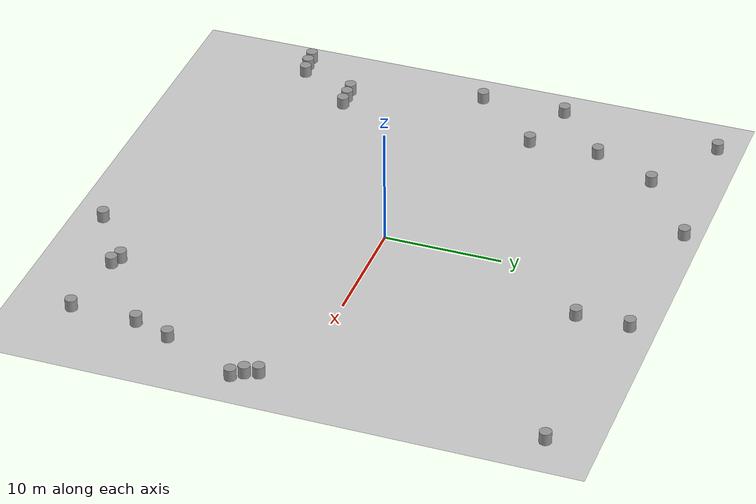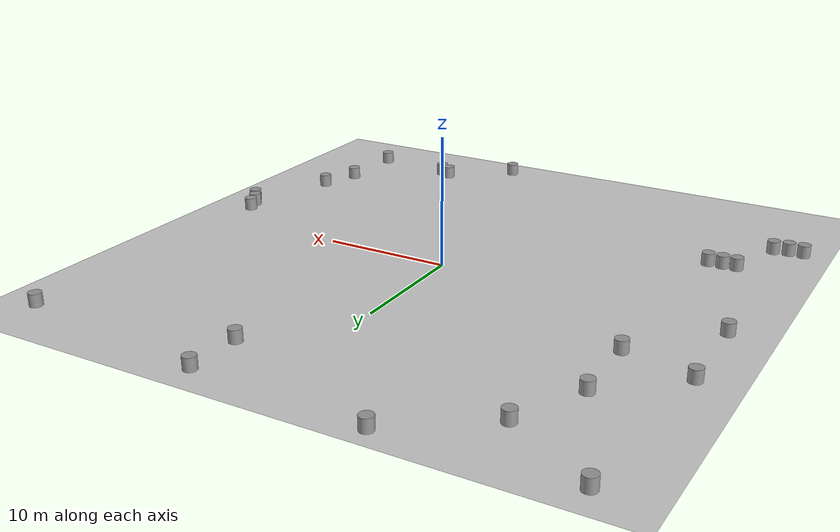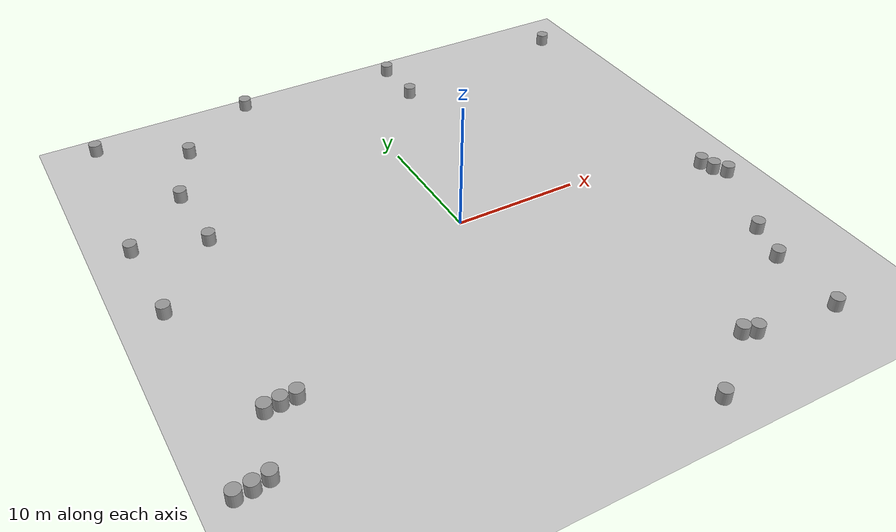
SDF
<sdf version="1.7">
 <world name="default">
  <light name="sun" type="directional">
   <pose>0 0 10 0 -0 0</pose>
   <diffuse>0.8 0.8 0.8 1</diffuse>
   <specular>0.2 0.2 0.2 1</specular>
   <attenuation>
    <range>1000</range>
    <constant>0.9</constant>
    <linear>0.01</linear>
    <quadratic>0.001</quadratic>
   </attenuation>
   <direction>-0.5 0.1 -0.9</direction>
   <spot><inner_angle>0</inner_angle><outer_angle>0</outer_angle><falloff>0</falloff></spot>
  </light>
  <gravity>0 0 -9.8</gravity>
  <magnetic_field>6e-06 2.3e-05 -4.2e-05</magnetic_field>
  <atmosphere type="adiabatic"/>
  <physics type="ode">
   <max_step_size>0.001</max_step_size>
   <real_time_factor>1</real_time_factor>
   <real_time_update_rate>1000</real_time_update_rate>
  </physics>
  <scene><ambient>0.4 0.4 0.4 1</ambient><background>0.7 0.7 0.7 1</background><shadows>1</shadows></scene>
  <spherical_coordinates>
   <surface_model>EARTH_WGS84</surface_model>
   <latitude_deg>0</latitude_deg>
   <longitude_deg>0</longitude_deg>
   <elevation>0</elevation>
   <heading_deg>0</heading_deg>
  </spherical_coordinates>
  <model name="grass">
   <static>1</static>
   <link name="link">
    <collision name="collision">
     <geometry><plane><normal>0 0 1</normal><size>10 10</size></plane></geometry>
     <surface><friction><ode><mu>100</mu><mu2>50</mu2></ode></friction></surface>
    </collision>
    <visual name="visual">
     <cast_shadows>0</cast_shadows>
     <geometry><plane><normal>0 0 1</normal><size>50 50</size></plane></geometry>
     <material>
      <script><uri>model://grass/materials/scripts/grass.material</uri><name>grass/ground</name></script>
     </material>
    </visual>
   </link>
   <pose>-0.500597 -0.51469 0 0 -0 0</pose>
  </model>
  <model name="unit_cylinder">
   <pose>10.068 -19.0924 0.499997 3e-06 2e-06 0.002457</pose>
   <link name="link">
    <inertial>
     <mass>1</mass>
     <inertia><ixx>0.145833</ixx><ixy>0</ixy><ixz>0</ixz><iyy>0.145833</iyy><iyz>0</iyz><izz>0.125</izz></inertia>
    </inertial>
    <collision name="collision">
     <geometry><cylinder><radius>0.5</radius><length>1</length></cylinder></geometry>
    </collision>
    <visual name="visual">
     <geometry><cylinder><radius>0.5</radius><length>1</length></cylinder></geometry>
     <material>
      <script><name>Gazebo/Grey</name><uri>file://media/materials/scripts/gazebo.material</uri></script>
     </material>
    </visual>
   </link>
  </model>
  <model name="unit_cylinder_0">
   <pose>5.23243 -22.7535 0.499997 3e-06 2e-06 0</pose>
   <link name="link">
    <inertial>
     <mass>1</mass>
     <inertia><ixx>0.145833</ixx><ixy>0</ixy><ixz>0</ixz><iyy>0.145833</iyy><iyz>0</iyz><izz>0.125</izz></inertia>
    </inertial>
    <collision name="collision">
     <geometry><cylinder><radius>0.5</radius><length>1</length></cylinder></geometry>
    </collision>
    <visual name="visual">
     <geometry><cylinder><radius>0.5</radius><length>1</length></cylinder></geometry>
     <material>
      <script><name>Gazebo/Grey</name><uri>file://media/materials/scripts/gazebo.material</uri></script>
     </material>
    </visual>
   </link>
  </model>
  <model name="unit_cylinder_1">
   <pose>10.9805 -19.5037 0.499996 3e-06 1e-06 0.009473</pose>
   <link name="link">
    <inertial>
     <mass>1</mass>
     <inertia><ixx>0.145833</ixx><ixy>0</ixy><ixz>0</ixz><iyy>0.145833</iyy><iyz>0</iyz><izz>0.125</izz></inertia>
    </inertial>
    <collision name="collision">
     <geometry><cylinder><radius>0.5</radius><length>1</length></cylinder></geometry>
    </collision>
    <visual name="visual">
     <geometry><cylinder><radius>0.5</radius><length>1</length></cylinder></geometry>
     <material>
      <script><name>Gazebo/Grey</name><uri>file://media/materials/scripts/gazebo.material</uri></script>
     </material>
    </visual>
   </link>
  </model>
  <model name="unit_cylinder_2">
   <pose>17.4229 -20.1741 0.499997 3e-06 2e-06 0</pose>
   <link name="link">
    <inertial>
     <mass>1</mass>
     <inertia><ixx>0.145833</ixx><ixy>0</ixy><ixz>0</ixz><iyy>0.145833</iyy><iyz>0</iyz><izz>0.125</izz></inertia>
    </inertial>
    <collision name="collision">
     <geometry><cylinder><radius>0.5</radius><length>1</length></cylinder></geometry>
    </collision>
    <visual name="visual">
     <geometry><cylinder><radius>0.5</radius><length>1</length></cylinder></geometry>
     <material>
      <script><name>Gazebo/Grey</name><uri>file://media/materials/scripts/gazebo.material</uri></script>
     </material>
    </visual>
   </link>
  </model>
  <model name="unit_cylinder_3">
   <pose>17.5996 -14.5253 0.499997 3e-06 2e-06 0</pose>
   <link name="link">
    <inertial>
     <mass>1</mass>
     <inertia><ixx>0.145833</ixx><ixy>0</ixy><ixz>0</ixz><iyy>0.145833</iyy><iyz>0</iyz><izz>0.125</izz></inertia>
    </inertial>
    <collision name="collision">
     <geometry><cylinder><radius>0.5</radius><length>1</length></cylinder></geometry>
    </collision>
    <visual name="visual">
     <geometry><cylinder><radius>0.5</radius><length>1</length></cylinder></geometry>
     <material>
      <script><name>Gazebo/Grey</name><uri>file://media/materials/scripts/gazebo.material</uri></script>
     </material>
    </visual>
   </link>
  </model>
  <model name="unit_cylinder_4">
   <pose>18.6652 -11.3863 0.499994 -3e-06 -2e-06 0</pose>
   <link name="link">
    <inertial>
     <mass>1</mass>
     <inertia><ixx>0.145833</ixx><ixy>0</ixy><ixz>0</ixz><iyy>0.145833</iyy><iyz>0</iyz><izz>0.125</izz></inertia>
    </inertial>
    <collision name="collision">
     <geometry><cylinder><radius>0.5</radius><length>1</length></cylinder></geometry>
    </collision>
    <visual name="visual">
     <geometry><cylinder><radius>0.5</radius><length>1</length></cylinder></geometry>
     <material>
      <script><name>Gazebo/Grey</name><uri>file://media/materials/scripts/gazebo.material</uri></script>
     </material>
    </visual>
   </link>
  </model>
  <model name="unit_cylinder_5">
   <pose>21.6345 -4.91974 0.499997 4e-06 2e-06 -0</pose>
   <link name="link">
    <inertial>
     <mass>1</mass>
     <inertia><ixx>0.145833</ixx><ixy>0</ixy><ixz>0</ixz><iyy>0.145833</iyy><iyz>0</iyz><izz>0.125</izz></inertia>
    </inertial>
    <collision name="collision">
     <geometry><cylinder><radius>0.5</radius><length>1</length></cylinder></geometry>
    </collision>
    <visual name="visual">
     <geometry><cylinder><radius>0.5</radius><length>1</length></cylinder></geometry>
     <material>
      <script><name>Gazebo/Grey</name><uri>file://media/materials/scripts/gazebo.material</uri></script>
     </material>
    </visual>
   </link>
  </model>
  <model name="unit_cylinder_6">
   <pose>20.9636 -4.0158 0.499997 4e-06 3e-06 -0</pose>
   <link name="link">
    <inertial>
     <mass>1</mass>
     <inertia><ixx>0.145833</ixx><ixy>0</ixy><ixz>0</ixz><iyy>0.145833</iyy><iyz>0</iyz><izz>0.125</izz></inertia>
    </inertial>
    <collision name="collision">
     <geometry><cylinder><radius>0.5</radius><length>1</length></cylinder></geometry>
    </collision>
    <visual name="visual">
     <geometry><cylinder><radius>0.5</radius><length>1</length></cylinder></geometry>
     <material>
      <script><name>Gazebo/Grey</name><uri>file://media/materials/scripts/gazebo.material</uri></script>
     </material>
    </visual>
   </link>
  </model>
  <model name="unit_cylinder_7">
   <pose>20.5934 -2.95704 0.499994 -4e-06 -3e-06 -0</pose>
   <link name="link">
    <inertial>
     <mass>1</mass>
     <inertia><ixx>0.145833</ixx><ixy>0</ixy><ixz>0</ixz><iyy>0.145833</iyy><iyz>0</iyz><izz>0.125</izz></inertia>
    </inertial>
    <collision name="collision">
     <geometry><cylinder><radius>0.5</radius><length>1</length></cylinder></geometry>
    </collision>
    <visual name="visual">
     <geometry><cylinder><radius>0.5</radius><length>1</length></cylinder></geometry>
     <material>
      <script><name>Gazebo/Grey</name><uri>file://media/materials/scripts/gazebo.material</uri></script>
     </material>
    </visual>
   </link>
  </model>
  <model name="unit_cylinder_8">
   <pose>21.0544 20.3519 0.499997 4e-06 3e-06 -0</pose>
   <link name="link">
    <inertial>
     <mass>1</mass>
     <inertia><ixx>0.145833</ixx><ixy>0</ixy><ixz>0</ixz><iyy>0.145833</iyy><iyz>0</iyz><izz>0.125</izz></inertia>
    </inertial>
    <collision name="collision">
     <geometry><cylinder><radius>0.5</radius><length>1</length></cylinder></geometry>
    </collision>
    <visual name="visual">
     <geometry><cylinder><radius>0.5</radius><length>1</length></cylinder></geometry>
     <material>
      <script><name>Gazebo/Grey</name><uri>file://media/materials/scripts/gazebo.material</uri></script>
     </material>
    </visual>
   </link>
  </model>
  <model name="unit_cylinder_9">
   <pose>5.31202 22.3543 0.499994 -4e-06 -3e-06 -0</pose>
   <link name="link">
    <inertial>
     <mass>1</mass>
     <inertia><ixx>0.145833</ixx><ixy>0</ixy><ixz>0</ixz><iyy>0.145833</iyy><iyz>0</iyz><izz>0.125</izz></inertia>
    </inertial>
    <collision name="collision">
     <geometry><cylinder><radius>0.5</radius><length>1</length></cylinder></geometry>
    </collision>
    <visual name="visual">
     <geometry><cylinder><radius>0.5</radius><length>1</length></cylinder></geometry>
     <material>
      <script><name>Gazebo/Grey</name><uri>file://media/materials/scripts/gazebo.material</uri></script>
     </material>
    </visual>
   </link>
  </model>
  <model name="unit_cylinder_10">
   <pose>5.32308 17.9226 0.499997 4e-06 3e-06 -0</pose>
   <link name="link">
    <inertial>
     <mass>1</mass>
     <inertia><ixx>0.145833</ixx><ixy>0</ixy><ixz>0</ixz><iyy>0.145833</iyy><iyz>0</iyz><izz>0.125</izz></inertia>
    </inertial>
    <collision name="collision">
     <geometry><cylinder><radius>0.5</radius><length>1</length></cylinder></geometry>
    </collision>
    <visual name="visual">
     <geometry><cylinder><radius>0.5</radius><length>1</length></cylinder></geometry>
     <material>
      <script><name>Gazebo/Grey</name><uri>file://media/materials/scripts/gazebo.material</uri></script>
     </material>
    </visual>
   </link>
  </model>
  <model name="unit_cylinder_11">
   <pose>-8.15629 23.0363 0.499997 4e-06 3e-06 -0</pose>
   <link name="link">
    <inertial>
     <mass>1</mass>
     <inertia><ixx>0.145833</ixx><ixy>0</ixy><ixz>0</ixz><iyy>0.145833</iyy><iyz>0</iyz><izz>0.125</izz></inertia>
    </inertial>
    <collision name="collision">
     <geometry><cylinder><radius>0.5</radius><length>1</length></cylinder></geometry>
    </collision>
    <visual name="visual">
     <geometry><cylinder><radius>0.5</radius><length>1</length></cylinder></geometry>
     <material>
      <script><name>Gazebo/Grey</name><uri>file://media/materials/scripts/gazebo.material</uri></script>
     </material>
    </visual>
   </link>
  </model>
  <model name="unit_cylinder_12">
   <pose>-21.3041 22.3159 0.499994 -4e-06 -3e-06 -0</pose>
   <link name="link">
    <inertial>
     <mass>1</mass>
     <inertia><ixx>0.145833</ixx><ixy>0</ixy><ixz>0</ixz><iyy>0.145833</iyy><iyz>0</iyz><izz>0.125</izz></inertia>
    </inertial>
    <collision name="collision">
     <geometry><cylinder><radius>0.5</radius><length>1</length></cylinder></geometry>
    </collision>
    <visual name="visual">
     <geometry><cylinder><radius>0.5</radius><length>1</length></cylinder></geometry>
     <material>
      <script><name>Gazebo/Grey</name><uri>file://media/materials/scripts/gazebo.material</uri></script>
     </material>
    </visual>
   </link>
  </model>
  <model name="unit_cylinder_13">
   <pose>-17.2545 12.9465 0.499994 -4e-06 -4e-06 -0</pose>
   <link name="link">
    <inertial>
     <mass>1</mass>
     <inertia><ixx>0.145833</ixx><ixy>0</ixy><ixz>0</ixz><iyy>0.145833</iyy><iyz>0</iyz><izz>0.125</izz></inertia>
    </inertial>
    <collision name="collision">
     <geometry><cylinder><radius>0.5</radius><length>1</length></cylinder></geometry>
    </collision>
    <visual name="visual">
     <geometry><cylinder><radius>0.5</radius><length>1</length></cylinder></geometry>
     <material>
      <script><name>Gazebo/Grey</name><uri>file://media/materials/scripts/gazebo.material</uri></script>
     </material>
    </visual>
   </link>
  </model>
  <model name="unit_cylinder_14">
   <pose>-22.4143 8.40238 0.499998 3e-06 -4e-06 0</pose>
   <link name="link">
    <inertial>
     <mass>1</mass>
     <inertia><ixx>0.145833</ixx><ixy>0</ixy><ixz>0</ixz><iyy>0.145833</iyy><iyz>0</iyz><izz>0.125</izz></inertia>
    </inertial>
    <collision name="collision">
     <geometry><cylinder><radius>0.5</radius><length>1</length></cylinder></geometry>
    </collision>
    <visual name="visual">
     <geometry><cylinder><radius>0.5</radius><length>1</length></cylinder></geometry>
     <material>
      <script><name>Gazebo/Grey</name><uri>file://media/materials/scripts/gazebo.material</uri></script>
     </material>
    </visual>
   </link>
  </model>
  <model name="unit_cylinder_15">
   <pose>-17.0837 6.95572 0.499998 3e-06 -4e-06 0</pose>
   <link name="link">
    <inertial>
     <mass>1</mass>
     <inertia><ixx>0.145833</ixx><ixy>0</ixy><ixz>0</ixz><iyy>0.145833</iyy><iyz>0</iyz><izz>0.125</izz></inertia>
    </inertial>
    <collision name="collision">
     <geometry><cylinder><radius>0.5</radius><length>1</length></cylinder></geometry>
    </collision>
    <visual name="visual">
     <geometry><cylinder><radius>0.5</radius><length>1</length></cylinder></geometry>
     <material>
      <script><name>Gazebo/Grey</name><uri>file://media/materials/scripts/gazebo.material</uri></script>
     </material>
    </visual>
   </link>
  </model>
  <model name="unit_cylinder_16">
   <pose>-14.7467 18.362 0.499992 -4e-06 4e-06 0</pose>
   <link name="link">
    <inertial>
     <mass>1</mass>
     <inertia><ixx>0.145833</ixx><ixy>0</ixy><ixz>0</ixz><iyy>0.145833</iyy><iyz>0</iyz><izz>0.125</izz></inertia>
    </inertial>
    <collision name="collision">
     <geometry><cylinder><radius>0.5</radius><length>1</length></cylinder></geometry>
    </collision>
    <visual name="visual">
     <geometry><cylinder><radius>0.5</radius><length>1</length></cylinder></geometry>
     <material>
      <script><name>Gazebo/Grey</name><uri>file://media/materials/scripts/gazebo.material</uri></script>
     </material>
    </visual>
   </link>
  </model>
  <model name="unit_cylinder_17">
   <pose>-22.2747 1.07529 0.499992 -3e-06 -4e-06 -0</pose>
   <link name="link">
    <inertial>
     <mass>1</mass>
     <inertia><ixx>0.145833</ixx><ixy>0</ixy><ixz>0</ixz><iyy>0.145833</iyy><iyz>0</iyz><izz>0.125</izz></inertia>
    </inertial>
    <collision name="collision">
     <geometry><cylinder><radius>0.5</radius><length>1</length></cylinder></geometry>
    </collision>
    <visual name="visual">
     <geometry><cylinder><radius>0.5</radius><length>1</length></cylinder></geometry>
     <material>
      <script><name>Gazebo/Grey</name><uri>file://media/materials/scripts/gazebo.material</uri></script>
     </material>
    </visual>
   </link>
  </model>
  <model name="unit_cylinder_18">
   <pose>-18.5547 -10.1454 0.5 0 0 -0.000668</pose>
   <link name="link">
    <inertial>
     <mass>1</mass>
     <inertia><ixx>0.145833</ixx><ixy>0</ixy><ixz>0</ixz><iyy>0.145833</iyy><iyz>0</iyz><izz>0.125</izz></inertia>
    </inertial>
    <collision name="collision">
     <geometry><cylinder><radius>0.5</radius><length>1</length></cylinder></geometry>
    </collision>
    <visual name="visual">
     <geometry><cylinder><radius>0.5</radius><length>1</length></cylinder></geometry>
     <material>
      <script><name>Gazebo/Grey</name><uri>file://media/materials/scripts/gazebo.material</uri></script>
     </material>
    </visual>
   </link>
  </model>
  <model name="unit_cylinder_19">
   <pose>-17.4503 -10.1062 0.499997 4e-06 3e-06 -0.002645</pose>
   <link name="link">
    <inertial>
     <mass>1</mass>
     <inertia><ixx>0.145833</ixx><ixy>0</ixy><ixz>0</ixz><iyy>0.145833</iyy><iyz>0</iyz><izz>0.125</izz></inertia>
    </inertial>
    <collision name="collision">
     <geometry><cylinder><radius>0.5</radius><length>1</length></cylinder></geometry>
    </collision>
    <visual name="visual">
     <geometry><cylinder><radius>0.5</radius><length>1</length></cylinder></geometry>
     <material>
      <script><name>Gazebo/Grey</name><uri>file://media/materials/scripts/gazebo.material</uri></script>
     </material>
    </visual>
   </link>
  </model>
  <model name="unit_cylinder_20">
   <pose>-19.6264 -10.2158 0.499998 3e-06 -3e-06 0.000567</pose>
   <link name="link">
    <inertial>
     <mass>1</mass>
     <inertia><ixx>0.145833</ixx><ixy>0</ixy><ixz>0</ixz><iyy>0.145833</iyy><iyz>0</iyz><izz>0.125</izz></inertia>
    </inertial>
    <collision name="collision">
     <geometry><cylinder><radius>0.5</radius><length>1</length></cylinder></geometry>
    </collision>
    <visual name="visual">
     <geometry><cylinder><radius>0.5</radius><length>1</length></cylinder></geometry>
     <material>
      <script><name>Gazebo/Grey</name><uri>file://media/materials/scripts/gazebo.material</uri></script>
     </material>
    </visual>
   </link>
  </model>
  <model name="unit_cylinder_21">
   <pose>-23.4196 -15.2422 0.499998 3e-06 -4e-06 0.001576</pose>
   <link name="link">
    <inertial>
     <mass>1</mass>
     <inertia><ixx>0.145833</ixx><ixy>0</ixy><ixz>0</ixz><iyy>0.145833</iyy><iyz>0</iyz><izz>0.125</izz></inertia>
    </inertial>
    <collision name="collision">
     <geometry><cylinder><radius>0.5</radius><length>1</length></cylinder></geometry>
    </collision>
    <visual name="visual">
     <geometry><cylinder><radius>0.5</radius><length>1</length></cylinder></geometry>
     <material>
      <script><name>Gazebo/Grey</name><uri>file://media/materials/scripts/gazebo.material</uri></script>
     </material>
    </visual>
   </link>
  </model>
  <model name="unit_cylinder_22">
   <pose>-22.2905 -15.1677 0.499993 1e-06 -1e-06 -8.6e-05</pose>
   <link name="link">
    <inertial>
     <mass>1</mass>
     <inertia><ixx>0.145833</ixx><ixy>0</ixy><ixz>0</ixz><iyy>0.145833</iyy><iyz>0</iyz><izz>0.125</izz></inertia>
    </inertial>
    <collision name="collision">
     <geometry><cylinder><radius>0.5</radius><length>1</length></cylinder></geometry>
    </collision>
    <visual name="visual">
     <geometry><cylinder><radius>0.5</radius><length>1</length></cylinder></geometry>
     <material>
      <script><name>Gazebo/Grey</name><uri>file://media/materials/scripts/gazebo.material</uri></script>
     </material>
    </visual>
   </link>
  </model>
  <model name="unit_cylinder_23">
   <pose>-21.1542 -14.9669 0.499997 3e-06 2e-06 0</pose>
   <link name="link">
    <inertial>
     <mass>1</mass>
     <inertia><ixx>0.145833</ixx><ixy>0</ixy><ixz>0</ixz><iyy>0.145833</iyy><iyz>0</iyz><izz>0.125</izz></inertia>
    </inertial>
    <collision name="collision">
     <geometry><cylinder><radius>0.5</radius><length>1</length></cylinder></geometry>
    </collision>
    <visual name="visual">
     <geometry><cylinder><radius>0.5</radius><length>1</length></cylinder></geometry>
     <material>
      <script><name>Gazebo/Grey</name><uri>file://media/materials/scripts/gazebo.material</uri></script>
     </material>
    </visual>
   </link>
  </model>
 </world>
</sdf>
